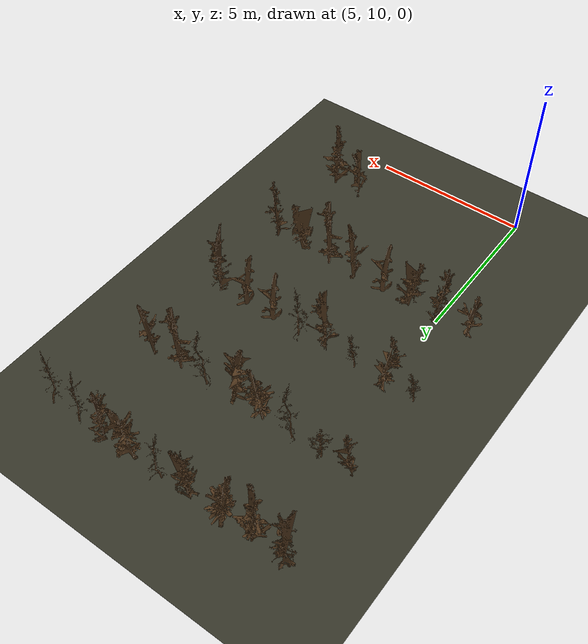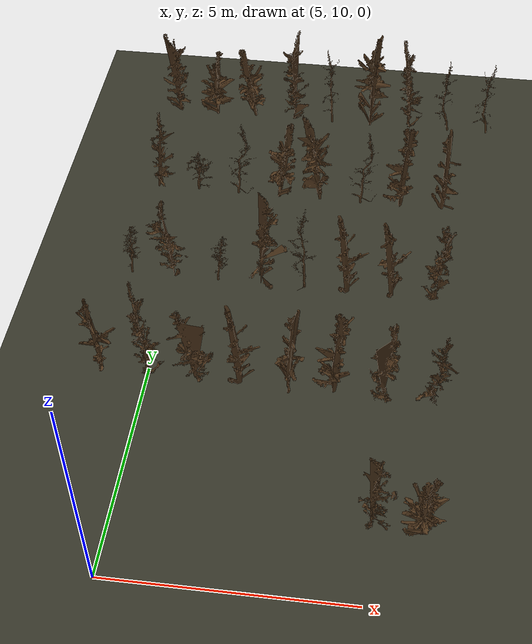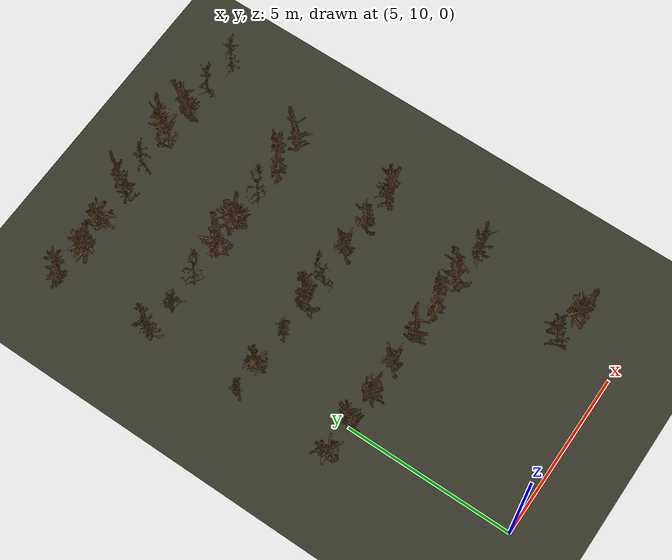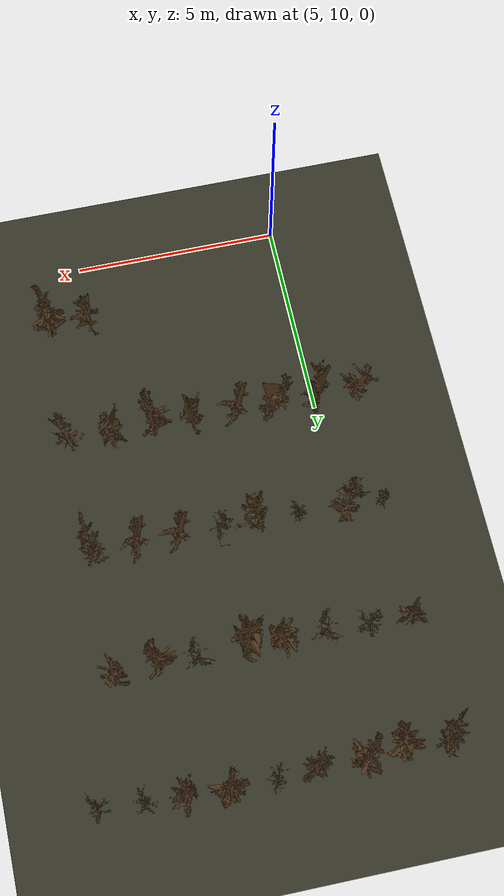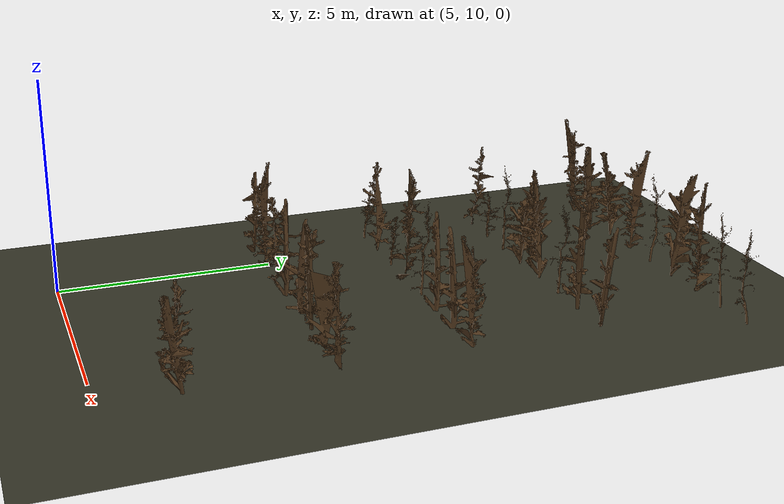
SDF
<sdf version="1.9">
 <world name="orchard_dormant_world">
  <model name="ground_plane">
   <static>true</static>
   <link name="link">
    <collision name="collision">
     <geometry><plane><normal>0 0 1</normal><size>500 500</size></plane></geometry>
    </collision>
    <visual name="visual">
     <geometry><plane><normal>0 0 1</normal><size>500 500</size></plane></geometry>
     <material><ambient>0.2 0.2 0.15 1</ambient><diffuse>0.2 0.2 0.15 1</diffuse></material>
    </visual>
   </link>
  </model>
  <model name="tree19">
   <static>true</static>
   <pose>12.000 23.830 -0.1 0 0 1.425</pose>
   <link name="link">
    <collision name="collision">
     <geometry>
      <mesh>
       <uri>file:///home/administrator/ros2/orchard_navigation_rl_ws/src/orchard_worlds/models/orchard_model/tree16_collision.stl</uri>
      </mesh>
     </geometry>
    </collision>
    <visual name="visual">
     <geometry>
      <mesh>
       <uri>file:///home/administrator/ros2/orchard_navigation_rl_ws/src/orchard_worlds/models/orchard_model/tree16.stl</uri>
      </mesh>
     </geometry>
     <material><ambient>0.3 0.2 0.1 1</ambient><diffuse>0.3 0.2 0.1 1</diffuse></material>
    </visual>
   </link>
  </model>
  <model name="tree20">
   <static>true</static>
   <pose>11.000 23.830 -0.1 0 0 0.603</pose>
   <link name="link">
    <collision name="collision">
     <geometry>
      <mesh>
       <uri>file:///home/administrator/ros2/orchard_navigation_rl_ws/src/orchard_worlds/models/orchard_model/tree16_collision.stl</uri>
      </mesh>
     </geometry>
    </collision>
    <visual name="visual">
     <geometry>
      <mesh>
       <uri>file:///home/administrator/ros2/orchard_navigation_rl_ws/src/orchard_worlds/models/orchard_model/tree16.stl</uri>
      </mesh>
     </geometry>
     <material><ambient>0.3 0.2 0.1 1</ambient><diffuse>0.3 0.2 0.1 1</diffuse></material>
    </visual>
   </link>
  </model>
  <model name="tree21">
   <static>true</static>
   <pose>10.000 23.830 -0.1 0 0 4.419</pose>
   <link name="link">
    <collision name="collision">
     <geometry>
      <mesh>
       <uri>file:///home/administrator/ros2/orchard_navigation_rl_ws/src/orchard_worlds/models/orchard_model/tree5_collision.stl</uri>
      </mesh>
     </geometry>
    </collision>
    <visual name="visual">
     <geometry>
      <mesh>
       <uri>file:///home/administrator/ros2/orchard_navigation_rl_ws/src/orchard_worlds/models/orchard_model/tree5.stl</uri>
      </mesh>
     </geometry>
     <material><ambient>0.3 0.2 0.1 1</ambient><diffuse>0.3 0.2 0.1 1</diffuse></material>
    </visual>
   </link>
  </model>
  <model name="tree22">
   <static>true</static>
   <pose>9.000 23.830 -0.1 0 0 3.785</pose>
   <link name="link">
    <collision name="collision">
     <geometry>
      <mesh>
       <uri>file:///home/administrator/ros2/orchard_navigation_rl_ws/src/orchard_worlds/models/orchard_model/tree7_collision.stl</uri>
      </mesh>
     </geometry>
    </collision>
    <visual name="visual">
     <geometry>
      <mesh>
       <uri>file:///home/administrator/ros2/orchard_navigation_rl_ws/src/orchard_worlds/models/orchard_model/tree7.stl</uri>
      </mesh>
     </geometry>
     <material><ambient>0.3 0.2 0.1 1</ambient><diffuse>0.3 0.2 0.1 1</diffuse></material>
    </visual>
   </link>
  </model>
  <model name="tree23">
   <static>true</static>
   <pose>8.000 23.830 -0.1 0 0 5.769</pose>
   <link name="link">
    <collision name="collision">
     <geometry>
      <mesh>
       <uri>file:///home/administrator/ros2/orchard_navigation_rl_ws/src/orchard_worlds/models/orchard_model/tree16_collision.stl</uri>
      </mesh>
     </geometry>
    </collision>
    <visual name="visual">
     <geometry>
      <mesh>
       <uri>file:///home/administrator/ros2/orchard_navigation_rl_ws/src/orchard_worlds/models/orchard_model/tree16.stl</uri>
      </mesh>
     </geometry>
     <material><ambient>0.3 0.2 0.1 1</ambient><diffuse>0.3 0.2 0.1 1</diffuse></material>
    </visual>
   </link>
  </model>
  <model name="tree24">
   <static>true</static>
   <pose>7.000 23.830 -0.1 0 0 3.286</pose>
   <link name="link">
    <collision name="collision">
     <geometry>
      <mesh>
       <uri>file:///home/administrator/ros2/orchard_navigation_rl_ws/src/orchard_worlds/models/orchard_model/tree5_collision.stl</uri>
      </mesh>
     </geometry>
    </collision>
    <visual name="visual">
     <geometry>
      <mesh>
       <uri>file:///home/administrator/ros2/orchard_navigation_rl_ws/src/orchard_worlds/models/orchard_model/tree5.stl</uri>
      </mesh>
     </geometry>
     <material><ambient>0.3 0.2 0.1 1</ambient><diffuse>0.3 0.2 0.1 1</diffuse></material>
    </visual>
   </link>
  </model>
  <model name="tree25">
   <static>true</static>
   <pose>6.000 23.830 -0.1 0 0 6.239</pose>
   <link name="link">
    <collision name="collision">
     <geometry>
      <mesh>
       <uri>file:///home/administrator/ros2/orchard_navigation_rl_ws/src/orchard_worlds/models/orchard_model/tree12_collision.stl</uri>
      </mesh>
     </geometry>
    </collision>
    <visual name="visual">
     <geometry>
      <mesh>
       <uri>file:///home/administrator/ros2/orchard_navigation_rl_ws/src/orchard_worlds/models/orchard_model/tree12.stl</uri>
      </mesh>
     </geometry>
     <material><ambient>0.3 0.2 0.1 1</ambient><diffuse>0.3 0.2 0.1 1</diffuse></material>
    </visual>
   </link>
  </model>
  <model name="tree26">
   <static>true</static>
   <pose>5.000 23.830 -0.1 0 0 1.590</pose>
   <link name="link">
    <collision name="collision">
     <geometry>
      <mesh>
       <uri>file:///home/administrator/ros2/orchard_navigation_rl_ws/src/orchard_worlds/models/orchard_model/tree12_collision.stl</uri>
      </mesh>
     </geometry>
    </collision>
    <visual name="visual">
     <geometry>
      <mesh>
       <uri>file:///home/administrator/ros2/orchard_navigation_rl_ws/src/orchard_worlds/models/orchard_model/tree12.stl</uri>
      </mesh>
     </geometry>
     <material><ambient>0.3 0.2 0.1 1</ambient><diffuse>0.3 0.2 0.1 1</diffuse></material>
    </visual>
   </link>
  </model>
  <model name="tree27">
   <static>true</static>
   <pose>4.000 23.830 -0.1 0 0 6.030</pose>
   <link name="link">
    <collision name="collision">
     <geometry>
      <mesh>
       <uri>file:///home/administrator/ros2/orchard_navigation_rl_ws/src/orchard_worlds/models/orchard_model/tree5_collision.stl</uri>
      </mesh>
     </geometry>
    </collision>
    <visual name="visual">
     <geometry>
      <mesh>
       <uri>file:///home/administrator/ros2/orchard_navigation_rl_ws/src/orchard_worlds/models/orchard_model/tree5.stl</uri>
      </mesh>
     </geometry>
     <material><ambient>0.3 0.2 0.1 1</ambient><diffuse>0.3 0.2 0.1 1</diffuse></material>
    </visual>
   </link>
  </model>
  <model name="tree57">
   <static>true</static>
   <pose>11.000 20.800 -0.1 0 0 3.767</pose>
   <link name="link">
    <collision name="collision">
     <geometry>
      <mesh>
       <uri>file:///home/administrator/ros2/orchard_navigation_rl_ws/src/orchard_worlds/models/orchard_model/tree13_collision.stl</uri>
      </mesh>
     </geometry>
    </collision>
    <visual name="visual">
     <geometry>
      <mesh>
       <uri>file:///home/administrator/ros2/orchard_navigation_rl_ws/src/orchard_worlds/models/orchard_model/tree13.stl</uri>
      </mesh>
     </geometry>
     <material><ambient>0.3 0.2 0.1 1</ambient><diffuse>0.3 0.2 0.1 1</diffuse></material>
    </visual>
   </link>
  </model>
  <model name="tree58">
   <static>true</static>
   <pose>10.000 20.800 -0.1 0 0 2.060</pose>
   <link name="link">
    <collision name="collision">
     <geometry>
      <mesh>
       <uri>file:///home/administrator/ros2/orchard_navigation_rl_ws/src/orchard_worlds/models/orchard_model/tree6_collision.stl</uri>
      </mesh>
     </geometry>
    </collision>
    <visual name="visual">
     <geometry>
      <mesh>
       <uri>file:///home/administrator/ros2/orchard_navigation_rl_ws/src/orchard_worlds/models/orchard_model/tree6.stl</uri>
      </mesh>
     </geometry>
     <material><ambient>0.3 0.2 0.1 1</ambient><diffuse>0.3 0.2 0.1 1</diffuse></material>
    </visual>
   </link>
  </model>
  <model name="tree59">
   <static>true</static>
   <pose>9.000 20.800 -0.1 0 0 2.069</pose>
   <link name="link">
    <collision name="collision">
     <geometry>
      <mesh>
       <uri>file:///home/administrator/ros2/orchard_navigation_rl_ws/src/orchard_worlds/models/orchard_model/tree9_collision.stl</uri>
      </mesh>
     </geometry>
    </collision>
    <visual name="visual">
     <geometry>
      <mesh>
       <uri>file:///home/administrator/ros2/orchard_navigation_rl_ws/src/orchard_worlds/models/orchard_model/tree9.stl</uri>
      </mesh>
     </geometry>
     <material><ambient>0.3 0.2 0.1 1</ambient><diffuse>0.3 0.2 0.1 1</diffuse></material>
    </visual>
   </link>
  </model>
  <model name="tree60">
   <static>true</static>
   <pose>8.000 20.800 -0.1 0 0 5.929</pose>
   <link name="link">
    <collision name="collision">
     <geometry>
      <mesh>
       <uri>file:///home/administrator/ros2/orchard_navigation_rl_ws/src/orchard_worlds/models/orchard_model/tree7_collision.stl</uri>
      </mesh>
     </geometry>
    </collision>
    <visual name="visual">
     <geometry>
      <mesh>
       <uri>file:///home/administrator/ros2/orchard_navigation_rl_ws/src/orchard_worlds/models/orchard_model/tree7.stl</uri>
      </mesh>
     </geometry>
     <material><ambient>0.3 0.2 0.1 1</ambient><diffuse>0.3 0.2 0.1 1</diffuse></material>
    </visual>
   </link>
  </model>
  <model name="tree61">
   <static>true</static>
   <pose>7.000 20.800 -0.1 0 0 3.069</pose>
   <link name="link">
    <collision name="collision">
     <geometry>
      <mesh>
       <uri>file:///home/administrator/ros2/orchard_navigation_rl_ws/src/orchard_worlds/models/orchard_model/tree12_collision.stl</uri>
      </mesh>
     </geometry>
    </collision>
    <visual name="visual">
     <geometry>
      <mesh>
       <uri>file:///home/administrator/ros2/orchard_navigation_rl_ws/src/orchard_worlds/models/orchard_model/tree12.stl</uri>
      </mesh>
     </geometry>
     <material><ambient>0.3 0.2 0.1 1</ambient><diffuse>0.3 0.2 0.1 1</diffuse></material>
    </visual>
   </link>
  </model>
  <model name="tree62">
   <static>true</static>
   <pose>6.000 20.800 -0.1 0 0 1.825</pose>
   <link name="link">
    <collision name="collision">
     <geometry>
      <mesh>
       <uri>file:///home/administrator/ros2/orchard_navigation_rl_ws/src/orchard_worlds/models/orchard_model/tree9_collision.stl</uri>
      </mesh>
     </geometry>
    </collision>
    <visual name="visual">
     <geometry>
      <mesh>
       <uri>file:///home/administrator/ros2/orchard_navigation_rl_ws/src/orchard_worlds/models/orchard_model/tree9.stl</uri>
      </mesh>
     </geometry>
     <material><ambient>0.3 0.2 0.1 1</ambient><diffuse>0.3 0.2 0.1 1</diffuse></material>
    </visual>
   </link>
  </model>
  <model name="tree63">
   <static>true</static>
   <pose>5.000 20.800 -0.1 0 0 4.355</pose>
   <link name="link">
    <collision name="collision">
     <geometry>
      <mesh>
       <uri>file:///home/administrator/ros2/orchard_navigation_rl_ws/src/orchard_worlds/models/orchard_model/tree14_collision.stl</uri>
      </mesh>
     </geometry>
    </collision>
    <visual name="visual">
     <geometry>
      <mesh>
       <uri>file:///home/administrator/ros2/orchard_navigation_rl_ws/src/orchard_worlds/models/orchard_model/tree14.stl</uri>
      </mesh>
     </geometry>
     <material><ambient>0.3 0.2 0.1 1</ambient><diffuse>0.3 0.2 0.1 1</diffuse></material>
    </visual>
   </link>
  </model>
  <model name="tree64">
   <static>true</static>
   <pose>4.000 20.800 -0.1 0 0 3.240</pose>
   <link name="link">
    <collision name="collision">
     <geometry>
      <mesh>
       <uri>file:///home/administrator/ros2/orchard_navigation_rl_ws/src/orchard_worlds/models/orchard_model/tree2_collision.stl</uri>
      </mesh>
     </geometry>
    </collision>
    <visual name="visual">
     <geometry>
      <mesh>
       <uri>file:///home/administrator/ros2/orchard_navigation_rl_ws/src/orchard_worlds/models/orchard_model/tree2.stl</uri>
      </mesh>
     </geometry>
     <material><ambient>0.3 0.2 0.1 1</ambient><diffuse>0.3 0.2 0.1 1</diffuse></material>
    </visual>
   </link>
  </model>
  <model name="tree94">
   <static>true</static>
   <pose>11.000 17.800 -0.1 0 0 0.701</pose>
   <link name="link">
    <collision name="collision">
     <geometry>
      <mesh>
       <uri>file:///home/administrator/ros2/orchard_navigation_rl_ws/src/orchard_worlds/models/orchard_model/tree5_collision.stl</uri>
      </mesh>
     </geometry>
    </collision>
    <visual name="visual">
     <geometry>
      <mesh>
       <uri>file:///home/administrator/ros2/orchard_navigation_rl_ws/src/orchard_worlds/models/orchard_model/tree5.stl</uri>
      </mesh>
     </geometry>
     <material><ambient>0.3 0.2 0.1 1</ambient><diffuse>0.3 0.2 0.1 1</diffuse></material>
    </visual>
   </link>
  </model>
  <model name="tree95">
   <static>true</static>
   <pose>10.000 17.800 -0.1 0 0 5.638</pose>
   <link name="link">
    <collision name="collision">
     <geometry>
      <mesh>
       <uri>file:///home/administrator/ros2/orchard_navigation_rl_ws/src/orchard_worlds/models/orchard_model/tree13_collision.stl</uri>
      </mesh>
     </geometry>
    </collision>
    <visual name="visual">
     <geometry>
      <mesh>
       <uri>file:///home/administrator/ros2/orchard_navigation_rl_ws/src/orchard_worlds/models/orchard_model/tree13.stl</uri>
      </mesh>
     </geometry>
     <material><ambient>0.3 0.2 0.1 1</ambient><diffuse>0.3 0.2 0.1 1</diffuse></material>
    </visual>
   </link>
  </model>
  <model name="tree96">
   <static>true</static>
   <pose>9.000 17.800 -0.1 0 0 5.226</pose>
   <link name="link">
    <collision name="collision">
     <geometry>
      <mesh>
       <uri>file:///home/administrator/ros2/orchard_navigation_rl_ws/src/orchard_worlds/models/orchard_model/tree13_collision.stl</uri>
      </mesh>
     </geometry>
    </collision>
    <visual name="visual">
     <geometry>
      <mesh>
       <uri>file:///home/administrator/ros2/orchard_navigation_rl_ws/src/orchard_worlds/models/orchard_model/tree13.stl</uri>
      </mesh>
     </geometry>
     <material><ambient>0.3 0.2 0.1 1</ambient><diffuse>0.3 0.2 0.1 1</diffuse></material>
    </visual>
   </link>
  </model>
  <model name="tree97">
   <static>true</static>
   <pose>8.000 17.800 -0.1 0 0 3.944</pose>
   <link name="link">
    <collision name="collision">
     <geometry>
      <mesh>
       <uri>file:///home/administrator/ros2/orchard_navigation_rl_ws/src/orchard_worlds/models/orchard_model/tree9_collision.stl</uri>
      </mesh>
     </geometry>
    </collision>
    <visual name="visual">
     <geometry>
      <mesh>
       <uri>file:///home/administrator/ros2/orchard_navigation_rl_ws/src/orchard_worlds/models/orchard_model/tree9.stl</uri>
      </mesh>
     </geometry>
     <material><ambient>0.3 0.2 0.1 1</ambient><diffuse>0.3 0.2 0.1 1</diffuse></material>
    </visual>
   </link>
  </model>
  <model name="tree98">
   <static>true</static>
   <pose>7.000 17.800 -0.1 0 0 2.585</pose>
   <link name="link">
    <collision name="collision">
     <geometry>
      <mesh>
       <uri>file:///home/administrator/ros2/orchard_navigation_rl_ws/src/orchard_worlds/models/orchard_model/tree3_collision.stl</uri>
      </mesh>
     </geometry>
    </collision>
    <visual name="visual">
     <geometry>
      <mesh>
       <uri>file:///home/administrator/ros2/orchard_navigation_rl_ws/src/orchard_worlds/models/orchard_model/tree3.stl</uri>
      </mesh>
     </geometry>
     <material><ambient>0.3 0.2 0.1 1</ambient><diffuse>0.3 0.2 0.1 1</diffuse></material>
    </visual>
   </link>
  </model>
  <model name="tree99">
   <static>true</static>
   <pose>6.000 17.800 -0.1 0 0 3.173</pose>
   <link name="link">
    <collision name="collision">
     <geometry>
      <mesh>
       <uri>file:///home/administrator/ros2/orchard_navigation_rl_ws/src/orchard_worlds/models/orchard_model/tree4_collision.stl</uri>
      </mesh>
     </geometry>
    </collision>
    <visual name="visual">
     <geometry>
      <mesh>
       <uri>file:///home/administrator/ros2/orchard_navigation_rl_ws/src/orchard_worlds/models/orchard_model/tree4.stl</uri>
      </mesh>
     </geometry>
     <material><ambient>0.3 0.2 0.1 1</ambient><diffuse>0.3 0.2 0.1 1</diffuse></material>
    </visual>
   </link>
  </model>
  <model name="tree100">
   <static>true</static>
   <pose>5.000 17.800 -0.1 0 0 5.185</pose>
   <link name="link">
    <collision name="collision">
     <geometry>
      <mesh>
       <uri>file:///home/administrator/ros2/orchard_navigation_rl_ws/src/orchard_worlds/models/orchard_model/tree10_collision.stl</uri>
      </mesh>
     </geometry>
    </collision>
    <visual name="visual">
     <geometry>
      <mesh>
       <uri>file:///home/administrator/ros2/orchard_navigation_rl_ws/src/orchard_worlds/models/orchard_model/tree10.stl</uri>
      </mesh>
     </geometry>
     <material><ambient>0.3 0.2 0.1 1</ambient><diffuse>0.3 0.2 0.1 1</diffuse></material>
    </visual>
   </link>
  </model>
  <model name="tree101">
   <static>true</static>
   <pose>4.000 17.800 -0.1 0 0 3.906</pose>
   <link name="link">
    <collision name="collision">
     <geometry>
      <mesh>
       <uri>file:///home/administrator/ros2/orchard_navigation_rl_ws/src/orchard_worlds/models/orchard_model/tree4_collision.stl</uri>
      </mesh>
     </geometry>
    </collision>
    <visual name="visual">
     <geometry>
      <mesh>
       <uri>file:///home/administrator/ros2/orchard_navigation_rl_ws/src/orchard_worlds/models/orchard_model/tree4.stl</uri>
      </mesh>
     </geometry>
     <material><ambient>0.3 0.2 0.1 1</ambient><diffuse>0.3 0.2 0.1 1</diffuse></material>
    </visual>
   </link>
  </model>
  <model name="tree128">
   <static>true</static>
   <pose>11.000 14.900 -0.1 0 0 1.759</pose>
   <link name="link">
    <collision name="collision">
     <geometry>
      <mesh>
       <uri>file:///home/administrator/ros2/orchard_navigation_rl_ws/src/orchard_worlds/models/orchard_model/tree2_collision.stl</uri>
      </mesh>
     </geometry>
    </collision>
    <visual name="visual">
     <geometry>
      <mesh>
       <uri>file:///home/administrator/ros2/orchard_navigation_rl_ws/src/orchard_worlds/models/orchard_model/tree2.stl</uri>
      </mesh>
     </geometry>
     <material><ambient>0.3 0.2 0.1 1</ambient><diffuse>0.3 0.2 0.1 1</diffuse></material>
    </visual>
   </link>
  </model>
  <model name="tree129">
   <static>true</static>
   <pose>10.000 14.900 -0.1 0 0 3.560</pose>
   <link name="link">
    <collision name="collision">
     <geometry>
      <mesh>
       <uri>file:///home/administrator/ros2/orchard_navigation_rl_ws/src/orchard_worlds/models/orchard_model/tree11_collision.stl</uri>
      </mesh>
     </geometry>
    </collision>
    <visual name="visual">
     <geometry>
      <mesh>
       <uri>file:///home/administrator/ros2/orchard_navigation_rl_ws/src/orchard_worlds/models/orchard_model/tree11.stl</uri>
      </mesh>
     </geometry>
     <material><ambient>0.3 0.2 0.1 1</ambient><diffuse>0.3 0.2 0.1 1</diffuse></material>
    </visual>
   </link>
  </model>
  <model name="tree130">
   <static>true</static>
   <pose>9.000 14.900 -0.1 0 0 1.858</pose>
   <link name="link">
    <collision name="collision">
     <geometry>
      <mesh>
       <uri>file:///home/administrator/ros2/orchard_navigation_rl_ws/src/orchard_worlds/models/orchard_model/tree6_collision.stl</uri>
      </mesh>
     </geometry>
    </collision>
    <visual name="visual">
     <geometry>
      <mesh>
       <uri>file:///home/administrator/ros2/orchard_navigation_rl_ws/src/orchard_worlds/models/orchard_model/tree6.stl</uri>
      </mesh>
     </geometry>
     <material><ambient>0.3 0.2 0.1 1</ambient><diffuse>0.3 0.2 0.1 1</diffuse></material>
    </visual>
   </link>
  </model>
  <model name="tree131">
   <static>true</static>
   <pose>8.000 14.900 -0.1 0 0 2.965</pose>
   <link name="link">
    <collision name="collision">
     <geometry>
      <mesh>
       <uri>file:///home/administrator/ros2/orchard_navigation_rl_ws/src/orchard_worlds/models/orchard_model/tree13_collision.stl</uri>
      </mesh>
     </geometry>
    </collision>
    <visual name="visual">
     <geometry>
      <mesh>
       <uri>file:///home/administrator/ros2/orchard_navigation_rl_ws/src/orchard_worlds/models/orchard_model/tree13.stl</uri>
      </mesh>
     </geometry>
     <material><ambient>0.3 0.2 0.1 1</ambient><diffuse>0.3 0.2 0.1 1</diffuse></material>
    </visual>
   </link>
  </model>
  <model name="tree132">
   <static>true</static>
   <pose>7.000 14.900 -0.1 0 0 5.071</pose>
   <link name="link">
    <collision name="collision">
     <geometry>
      <mesh>
       <uri>file:///home/administrator/ros2/orchard_navigation_rl_ws/src/orchard_worlds/models/orchard_model/tree13_collision.stl</uri>
      </mesh>
     </geometry>
    </collision>
    <visual name="visual">
     <geometry>
      <mesh>
       <uri>file:///home/administrator/ros2/orchard_navigation_rl_ws/src/orchard_worlds/models/orchard_model/tree13.stl</uri>
      </mesh>
     </geometry>
     <material><ambient>0.3 0.2 0.1 1</ambient><diffuse>0.3 0.2 0.1 1</diffuse></material>
    </visual>
   </link>
  </model>
  <model name="tree133">
   <static>true</static>
   <pose>6.000 14.900 -0.1 0 0 5.620</pose>
   <link name="link">
    <collision name="collision">
     <geometry>
      <mesh>
       <uri>file:///home/administrator/ros2/orchard_navigation_rl_ws/src/orchard_worlds/models/orchard_model/tree11_collision.stl</uri>
      </mesh>
     </geometry>
    </collision>
    <visual name="visual">
     <geometry>
      <mesh>
       <uri>file:///home/administrator/ros2/orchard_navigation_rl_ws/src/orchard_worlds/models/orchard_model/tree11.stl</uri>
      </mesh>
     </geometry>
     <material><ambient>0.3 0.2 0.1 1</ambient><diffuse>0.3 0.2 0.1 1</diffuse></material>
    </visual>
   </link>
  </model>
  <model name="tree134">
   <static>true</static>
   <pose>5.000 14.900 -0.1 0 0 4.374</pose>
   <link name="link">
    <collision name="collision">
     <geometry>
      <mesh>
       <uri>file:///home/administrator/ros2/orchard_navigation_rl_ws/src/orchard_worlds/models/orchard_model/tree5_collision.stl</uri>
      </mesh>
     </geometry>
    </collision>
    <visual name="visual">
     <geometry>
      <mesh>
       <uri>file:///home/administrator/ros2/orchard_navigation_rl_ws/src/orchard_worlds/models/orchard_model/tree5.stl</uri>
      </mesh>
     </geometry>
     <material><ambient>0.3 0.2 0.1 1</ambient><diffuse>0.3 0.2 0.1 1</diffuse></material>
    </visual>
   </link>
  </model>
  <model name="tree135">
   <static>true</static>
   <pose>4.000 14.900 -0.1 0 0 4.693</pose>
   <link name="link">
    <collision name="collision">
     <geometry>
      <mesh>
       <uri>file:///home/administrator/ros2/orchard_navigation_rl_ws/src/orchard_worlds/models/orchard_model/tree8_collision.stl</uri>
      </mesh>
     </geometry>
    </collision>
    <visual name="visual">
     <geometry>
      <mesh>
       <uri>file:///home/administrator/ros2/orchard_navigation_rl_ws/src/orchard_worlds/models/orchard_model/tree8.stl</uri>
      </mesh>
     </geometry>
     <material><ambient>0.3 0.2 0.1 1</ambient><diffuse>0.3 0.2 0.1 1</diffuse></material>
    </visual>
   </link>
  </model>
  <model name="tree162">
   <static>true</static>
   <pose>11.000 11.700 -0.1 0 0 1.565</pose>
   <link name="link">
    <collision name="collision">
     <geometry>
      <mesh>
       <uri>file:///home/administrator/ros2/orchard_navigation_rl_ws/src/orchard_worlds/models/orchard_model/tree12_collision.stl</uri>
      </mesh>
     </geometry>
    </collision>
    <visual name="visual">
     <geometry>
      <mesh>
       <uri>file:///home/administrator/ros2/orchard_navigation_rl_ws/src/orchard_worlds/models/orchard_model/tree12.stl</uri>
      </mesh>
     </geometry>
     <material><ambient>0.3 0.2 0.1 1</ambient><diffuse>0.3 0.2 0.1 1</diffuse></material>
    </visual>
   </link>
  </model>
  <model name="tree163">
   <static>true</static>
   <pose>10.000 11.700 -0.1 0 0 3.060</pose>
   <link name="link">
    <collision name="collision">
     <geometry>
      <mesh>
       <uri>file:///home/administrator/ros2/orchard_navigation_rl_ws/src/orchard_worlds/models/orchard_model/tree1_collision.stl</uri>
      </mesh>
     </geometry>
    </collision>
    <visual name="visual">
     <geometry>
      <mesh>
       <uri>file:///home/administrator/ros2/orchard_navigation_rl_ws/src/orchard_worlds/models/orchard_model/tree1.stl</uri>
      </mesh>
     </geometry>
     <material><ambient>0.3 0.2 0.1 1</ambient><diffuse>0.3 0.2 0.1 1</diffuse></material>
    </visual>
   </link>
  </model>
 </world>
</sdf>
